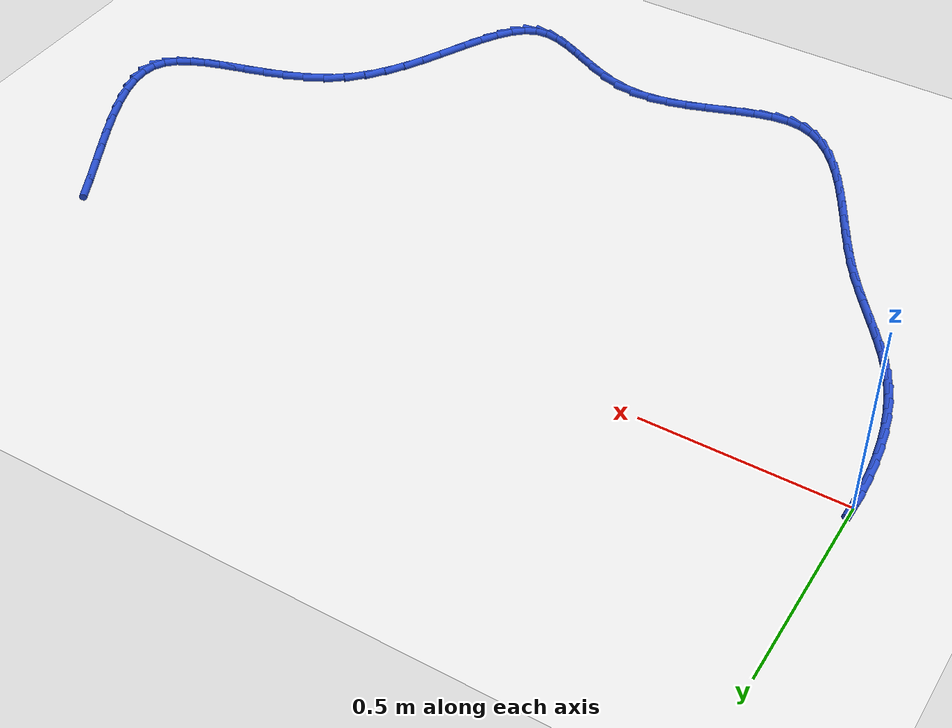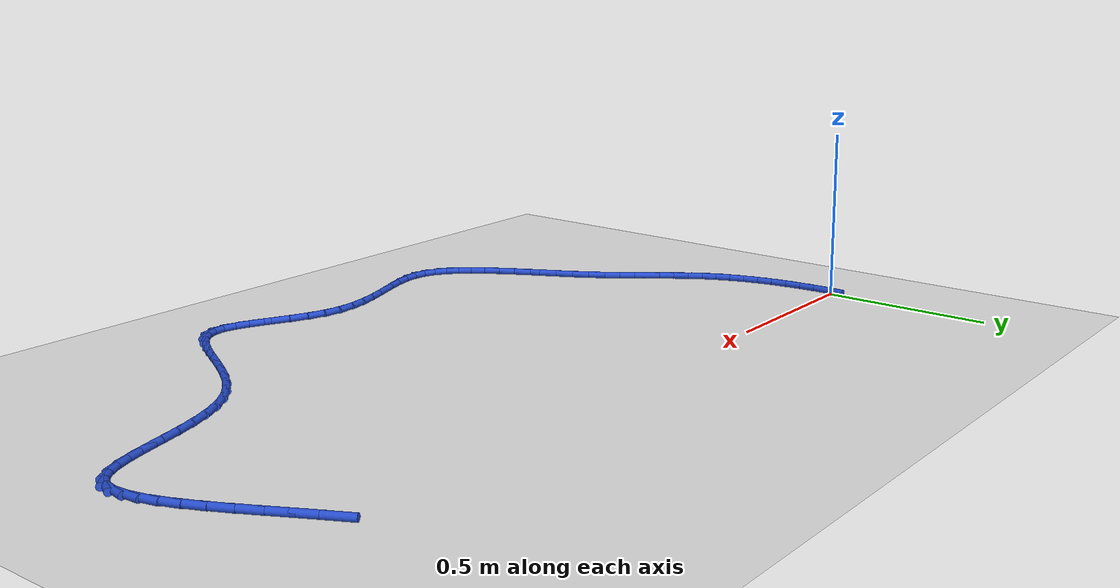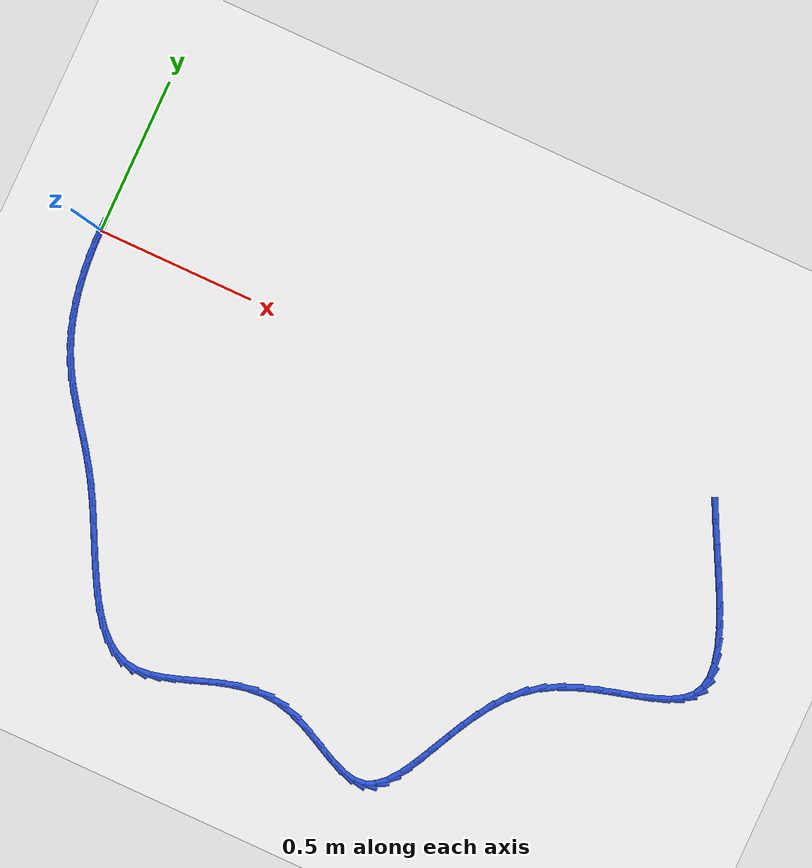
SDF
<sdf version="1.6">
 <world name="default">
  <model name="ground_plane">
   <static>1</static>
   <link name="link">
    <collision name="collision">
     <geometry><plane><normal>0 0 1</normal><size>100 100</size></plane></geometry>
     <surface><friction><ode><mu>100</mu><mu2>50</mu2></ode></friction></surface>
    </collision>
    <visual name="visual">
     <cast_shadows>0</cast_shadows>
     <geometry><plane><normal>0 0 1</normal><size>100 100</size></plane></geometry>
     <material>
      <script><uri>file://media/materials/scripts/gazebo.material</uri><name>Gazebo/WhiteGlow</name></script>
     </material>
    </visual>
   </link>
  </model>
  <model name="line">
   <link name="link_0">
    <pose>1.8214596497756474e-17 1.3877787807814457e-17 0.01 0 1.57 1.5548178268451183</pose>
    <collision name="collision">
     <geometry><cylinder><radius>0.01</radius><length>0.08</length></cylinder></geometry>
    </collision>
    <visual name="visual">
     <material>
      <script><name>Gazebo/Blue</name><uri>file://media/materials/scripts/gazebo.material</uri></script>
     </material>
     <geometry><cylinder><radius>0.01</radius><length>0.08</length></cylinder></geometry>
    </visual>
   </link>
   <link name="link_81">
    <pose>2.046188940904367 0.00824147313609748 0.01 0 1.57 -1.0976017355150212</pose>
    <collision name="collision">
     <geometry><cylinder><radius>0.01</radius><length>0.08</length></cylinder></geometry>
    </collision>
    <visual name="visual">
     <material>
      <script><name>Gazebo/Blue</name><uri>file://media/materials/scripts/gazebo.material</uri></script>
     </material>
     <geometry><cylinder><radius>0.01</radius><length>0.08</length></cylinder></geometry>
    </visual>
   </link>
   <link name="link_82">
    <pose>2.075594734433777 -0.049192689616332705 0.01 0 1.57 -1.0864667964752381</pose>
    <collision name="collision">
     <geometry><cylinder><radius>0.01</radius><length>0.08</length></cylinder></geometry>
    </collision>
    <visual name="visual">
     <material>
      <script><name>Gazebo/Blue</name><uri>file://media/materials/scripts/gazebo.material</uri></script>
     </material>
     <geometry><cylinder><radius>0.01</radius><length>0.08</length></cylinder></geometry>
    </visual>
   </link>
   <link name="link_83">
    <pose>2.1059235110085432 -0.10683811942499027 0.01 0 1.57 -1.0870074075006975</pose>
    <collision name="collision">
     <geometry><cylinder><radius>0.01</radius><length>0.08</length></cylinder></geometry>
    </collision>
    <visual name="visual">
     <material>
      <script><name>Gazebo/Blue</name><uri>file://media/materials/scripts/gazebo.material</uri></script>
     </material>
     <geometry><cylinder><radius>0.01</radius><length>0.08</length></cylinder></geometry>
    </visual>
   </link>
   <link name="link_84">
    <pose>2.1359684732666264 -0.16401910568980588 0.01 0 1.57 -1.0995557230910877</pose>
    <collision name="collision">
     <geometry><cylinder><radius>0.01</radius><length>0.08</length></cylinder></geometry>
    </collision>
    <visual name="visual">
     <material>
      <script><name>Gazebo/Blue</name><uri>file://media/materials/scripts/gazebo.material</uri></script>
     </material>
     <geometry><cylinder><radius>0.01</radius><length>0.08</length></cylinder></geometry>
    </visual>
   </link>
   <link name="link_85">
    <pose>2.1645228238459886 -0.2200599378107092 0.01 0 1.57 -1.1258431572442729</pose>
    <collision name="collision">
     <geometry><cylinder><radius>0.01</radius><length>0.08</length></cylinder></geometry>
    </collision>
    <visual name="visual">
     <material>
      <script><name>Gazebo/Blue</name><uri>file://media/materials/scripts/gazebo.material</uri></script>
     </material>
     <geometry><cylinder><radius>0.01</radius><length>0.08</length></cylinder></geometry>
    </visual>
   </link>
   <link name="link_86">
    <pose>2.19037976538459 -0.27428490518762993 0.01 0 1.57 -1.1694817657792487</pose>
    <collision name="collision">
     <geometry><cylinder><radius>0.01</radius><length>0.08</length></cylinder></geometry>
    </collision>
    <visual name="visual">
     <material>
      <script><name>Gazebo/Blue</name><uri>file://media/materials/scripts/gazebo.material</uri></script>
     </material>
     <geometry><cylinder><radius>0.01</radius><length>0.08</length></cylinder></geometry>
    </visual>
   </link>
   <link name="link_87">
    <pose>2.2123325005203918 -0.3260182972204986 0.01 0 1.57 -1.2369934002674094</pose>
    <collision name="collision">
     <geometry><cylinder><radius>0.01</radius><length>0.08</length></cylinder></geometry>
    </collision>
    <visual name="visual">
     <material>
      <script><name>Gazebo/Blue</name><uri>file://media/materials/scripts/gazebo.material</uri></script>
     </material>
     <geometry><cylinder><radius>0.01</radius><length>0.08</length></cylinder></geometry>
    </visual>
   </link>
   <link name="link_88">
    <pose>2.2291742318913537 -0.3745844033092429 0.01 0 1.57 -1.339687743128658</pose>
    <collision name="collision">
     <geometry><cylinder><radius>0.01</radius><length>0.08</length></cylinder></geometry>
    </collision>
    <visual name="visual">
     <material>
      <script><name>Gazebo/Blue</name><uri>file://media/materials/scripts/gazebo.material</uri></script>
     </material>
     <geometry><cylinder><radius>0.01</radius><length>0.08</length></cylinder></geometry>
    </visual>
   </link>
   <link name="link_89">
    <pose>2.2396981621354395 -0.4193075128537938 0.01 0 1.57 -1.4963321921765942</pose>
    <collision name="collision">
     <geometry><cylinder><radius>0.01</radius><length>0.08</length></cylinder></geometry>
    </collision>
    <visual name="visual">
     <material>
      <script><name>Gazebo/Blue</name><uri>file://media/materials/scripts/gazebo.material</uri></script>
     </material>
     <geometry><cylinder><radius>0.01</radius><length>0.08</length></cylinder></geometry>
    </visual>
   </link>
   <link name="link_90">
    <pose>2.242697493890608 -0.45951191525408075 0.01 0 1.57 1.4085096575872613</pose>
    <collision name="collision">
     <geometry><cylinder><radius>0.01</radius><length>0.08</length></cylinder></geometry>
    </collision>
    <visual name="visual">
     <material>
      <script><name>Gazebo/Blue</name><uri>file://media/materials/scripts/gazebo.material</uri></script>
     </material>
     <geometry><cylinder><radius>0.01</radius><length>0.08</length></cylinder></geometry>
    </visual>
   </link>
   <link name="link_91">
    <pose>2.236965429794821 -0.49452189991003337 0.01 0 1.57 1.0809004553279262</pose>
    <collision name="collision">
     <geometry><cylinder><radius>0.01</radius><length>0.08</length></cylinder></geometry>
    </collision>
    <visual name="visual">
     <material>
      <script><name>Gazebo/Blue</name><uri>file://media/materials/scripts/gazebo.material</uri></script>
     </material>
     <geometry><cylinder><radius>0.01</radius><length>0.08</length></cylinder></geometry>
    </visual>
   </link>
   <link name="link_92">
    <pose>2.2213905406373695 -0.5237291397155539 0.01 0 1.57 0.7586902319435239</pose>
    <collision name="collision">
     <geometry><cylinder><radius>0.01</radius><length>0.08</length></cylinder></geometry>
    </collision>
    <visual name="visual">
     <material>
      <script><name>Gazebo/Blue</name><uri>file://media/materials/scripts/gazebo.material</uri></script>
     </material>
     <geometry><cylinder><radius>0.01</radius><length>0.08</length></cylinder></geometry>
    </visual>
   </link>
   <link name="link_93">
    <pose>2.1962832214111137 -0.5475299142525645 0.01 0 1.57 0.5319614848232797</pose>
    <collision name="collision">
     <geometry><cylinder><radius>0.01</radius><length>0.08</length></cylinder></geometry>
    </collision>
    <visual name="visual">
     <material>
      <script><name>Gazebo/Blue</name><uri>file://media/materials/scripts/gazebo.material</uri></script>
     </material>
     <geometry><cylinder><radius>0.01</radius><length>0.08</length></cylinder></geometry>
    </visual>
   </link>
   <link name="link_94">
    <pose>2.163045754102558 -0.567091988757561 0.01 0 1.57 0.3920206581689313</pose>
    <collision name="collision">
     <geometry><cylinder><radius>0.01</radius><length>0.08</length></cylinder></geometry>
    </collision>
    <visual name="visual">
     <material>
      <script><name>Gazebo/Blue</name><uri>file://media/materials/scripts/gazebo.material</uri></script>
     </material>
     <geometry><cylinder><radius>0.01</radius><length>0.08</length></cylinder></geometry>
    </visual>
   </link>
   <link name="link_95">
    <pose>2.1231083559812673 -0.5836028664713032 0.01 0 1.57 0.31332876877495025</pose>
    <collision name="collision">
     <geometry><cylinder><radius>0.01</radius><length>0.08</length></cylinder></geometry>
    </collision>
    <visual name="visual">
     <material>
      <script><name>Gazebo/Blue</name><uri>file://media/materials/scripts/gazebo.material</uri></script>
     </material>
     <geometry><cylinder><radius>0.01</radius><length>0.08</length></cylinder></geometry>
    </visual>
   </link>
   <link name="link_96">
    <pose>2.0779012443168035 -0.598250050634552 0.01 0 1.57 0.27750169461137897</pose>
    <collision name="collision">
     <geometry><cylinder><radius>0.01</radius><length>0.08</length></cylinder></geometry>
    </collision>
    <visual name="visual">
     <material>
      <script><name>Gazebo/Blue</name><uri>file://media/materials/scripts/gazebo.material</uri></script>
     </material>
     <geometry><cylinder><radius>0.01</radius><length>0.08</length></cylinder></geometry>
    </visual>
   </link>
   <link name="link_97">
    <pose>2.028854636378733 -0.6122210444880669 0.01 0 1.57 0.274353634470719</pose>
    <collision name="collision">
     <geometry><cylinder><radius>0.01</radius><length>0.08</length></cylinder></geometry>
    </collision>
    <visual name="visual">
     <material>
      <script><name>Gazebo/Blue</name><uri>file://media/materials/scripts/gazebo.material</uri></script>
     </material>
     <geometry><cylinder><radius>0.01</radius><length>0.08</length></cylinder></geometry>
    </visual>
   </link>
   <link name="link_98">
    <pose>1.9773987494366194 -0.6267033512726083 0.01 0 1.57 0.2993226467915983</pose>
    <collision name="collision">
     <geometry><cylinder><radius>0.01</radius><length>0.08</length></cylinder></geometry>
    </collision>
    <visual name="visual">
     <material>
      <script><name>Gazebo/Blue</name><uri>file://media/materials/scripts/gazebo.material</uri></script>
     </material>
     <geometry><cylinder><radius>0.01</radius><length>0.08</length></cylinder></geometry>
    </visual>
   </link>
   <link name="link_99">
    <pose>1.9249638007600258 -0.6428844742289366 0.01 0 1.57 0.35155870999280564</pose>
    <collision name="collision">
     <geometry><cylinder><radius>0.01</radius><length>0.08</length></cylinder></geometry>
    </collision>
    <visual name="visual">
     <material>
      <script><name>Gazebo/Blue</name><uri>file://media/materials/scripts/gazebo.material</uri></script>
     </material>
     <geometry><cylinder><radius>0.01</radius><length>0.08</length></cylinder></geometry>
    </visual>
   </link>
   <link name="link_100">
    <pose>1.8729800076185168 -0.6619519165978118 0.01 0 1.57 0.4326886274358231</pose>
    <collision name="collision">
     <geometry><cylinder><radius>0.01</radius><length>0.08</length></cylinder></geometry>
    </collision>
    <visual name="visual">
     <material>
      <script><name>Gazebo/Blue</name><uri>file://media/materials/scripts/gazebo.material</uri></script>
     </material>
     <geometry><cylinder><radius>0.01</radius><length>0.08</length></cylinder></geometry>
    </visual>
   </link>
   <link name="link_101">
    <pose>1.8228775872816554 -0.6850931816199943 0.01 0 1.57 0.5455593657230685</pose>
    <collision name="collision">
     <geometry><cylinder><radius>0.01</radius><length>0.08</length></cylinder></geometry>
    </collision>
    <visual name="visual">
     <material>
      <script><name>Gazebo/Blue</name><uri>file://media/materials/scripts/gazebo.material</uri></script>
     </material>
     <geometry><cylinder><radius>0.01</radius><length>0.08</length></cylinder></geometry>
    </visual>
   </link>
   <link name="link_102">
    <pose>1.7760867570190073 -0.7134957725362437 0.01 0 1.57 0.6904258460177924</pose>
    <collision name="collision">
     <geometry><cylinder><radius>0.01</radius><length>0.08</length></cylinder></geometry>
    </collision>
    <visual name="visual">
     <material>
      <script><name>Gazebo/Blue</name><uri>file://media/materials/scripts/gazebo.material</uri></script>
     </material>
     <geometry><cylinder><radius>0.01</radius><length>0.08</length></cylinder></geometry>
    </visual>
   </link>
   <link name="link_103">
    <pose>1.733981688403015 -0.7482767604954491 0.01 0 1.57 0.8332734788682744</pose>
    <collision name="collision">
     <geometry><cylinder><radius>0.01</radius><length>0.08</length></cylinder></geometry>
    </collision>
    <visual name="visual">
     <material>
      <script><name>Gazebo/Blue</name><uri>file://media/materials/scripts/gazebo.material</uri></script>
     </material>
     <geometry><cylinder><radius>0.01</radius><length>0.08</length></cylinder></geometry>
    </visual>
   </link>
   <link name="link_104">
    <pose>1.6968321191472913 -0.7891652851726096 0.01 0 1.57 0.9437757573620571</pose>
    <collision name="collision">
     <geometry><cylinder><radius>0.01</radius><length>0.08</length></cylinder></geometry>
    </collision>
    <visual name="visual">
     <material>
      <script><name>Gazebo/Blue</name><uri>file://media/materials/scripts/gazebo.material</uri></script>
     </material>
     <geometry><cylinder><radius>0.01</radius><length>0.08</length></cylinder></geometry>
    </visual>
   </link>
   <link name="link_105">
    <pose>1.6638971144369745 -0.8346203837364905 0.01 0 1.57 1.0237496610962746</pose>
    <collision name="collision">
     <geometry><cylinder><radius>0.01</radius><length>0.08</length></cylinder></geometry>
    </collision>
    <visual name="visual">
     <material>
      <script><name>Gazebo/Blue</name><uri>file://media/materials/scripts/gazebo.material</uri></script>
     </material>
     <geometry><cylinder><radius>0.01</radius><length>0.08</length></cylinder></geometry>
    </visual>
   </link>
   <link name="link_106">
    <pose>1.6343984923057961 -0.8830542852167057 0.01 0 1.57 1.0766743158536016</pose>
    <collision name="collision">
     <geometry><cylinder><radius>0.01</radius><length>0.08</length></cylinder></geometry>
    </collision>
    <visual name="visual">
     <material>
      <script><name>Gazebo/Blue</name><uri>file://media/materials/scripts/gazebo.material</uri></script>
     </material>
     <geometry><cylinder><radius>0.01</radius><length>0.08</length></cylinder></geometry>
    </visual>
   </link>
   <link name="link_107">
    <pose>1.6075580707874892 -0.9328792186428664 0.01 0 1.57 1.104793071697448</pose>
    <collision name="collision">
     <geometry><cylinder><radius>0.01</radius><length>0.08</length></cylinder></geometry>
    </collision>
    <visual name="visual">
     <material>
      <script><name>Gazebo/Blue</name><uri>file://media/materials/scripts/gazebo.material</uri></script>
     </material>
     <geometry><cylinder><radius>0.01</radius><length>0.08</length></cylinder></geometry>
    </visual>
   </link>
   <link name="link_108">
    <pose>1.5825976679157854 -0.9825074130445868 0.01 0 1.57 1.108207323232043</pose>
    <collision name="collision">
     <geometry><cylinder><radius>0.01</radius><length>0.08</length></cylinder></geometry>
    </collision>
    <visual name="visual">
     <material>
      <script><name>Gazebo/Blue</name><uri>file://media/materials/scripts/gazebo.material</uri></script>
     </material>
     <geometry><cylinder><radius>0.01</radius><length>0.08</length></cylinder></geometry>
    </visual>
   </link>
   <link name="link_109">
    <pose>1.5587391017244165 -1.0303510974514793 0.01 0 1.57 1.0840511883248871</pose>
    <collision name="collision">
     <geometry><cylinder><radius>0.01</radius><length>0.08</length></cylinder></geometry>
    </collision>
    <visual name="visual">
     <material>
      <script><name>Gazebo/Blue</name><uri>file://media/materials/scripts/gazebo.material</uri></script>
     </material>
     <geometry><cylinder><radius>0.01</radius><length>0.08</length></cylinder></geometry>
    </visual>
   </link>
   <link name="link_110">
    <pose>1.5352041902471154 -1.074822500893158 0.01 0 1.57 1.025133803450332</pose>
    <collision name="collision">
     <geometry><cylinder><radius>0.01</radius><length>0.08</length></cylinder></geometry>
    </collision>
    <visual name="visual">
     <material>
      <script><name>Gazebo/Blue</name><uri>file://media/materials/scripts/gazebo.material</uri></script>
     </material>
     <geometry><cylinder><radius>0.01</radius><length>0.08</length></cylinder></geometry>
    </visual>
   </link>
   <link name="link_111">
    <pose>1.5112147515176129 -1.1143338523992359 0.01 0 1.57 0.9176675248479261</pose>
    <collision name="collision">
     <geometry><cylinder><radius>0.01</radius><length>0.08</length></cylinder></geometry>
    </collision>
    <visual name="visual">
     <material>
      <script><name>Gazebo/Blue</name><uri>file://media/materials/scripts/gazebo.material</uri></script>
     </material>
     <geometry><cylinder><radius>0.01</radius><length>0.08</length></cylinder></geometry>
    </visual>
   </link>
   <link name="link_112">
    <pose>1.4859926035696427 -1.1472973809993252 0.01 0 1.57 0.7392331496612072</pose>
    <collision name="collision">
     <geometry><cylinder><radius>0.01</radius><length>0.08</length></cylinder></geometry>
    </collision>
    <visual name="visual">
     <material>
      <script><name>Gazebo/Blue</name><uri>file://media/materials/scripts/gazebo.material</uri></script>
     </material>
     <geometry><cylinder><radius>0.01</radius><length>0.08</length></cylinder></geometry>
    </visual>
   </link>
   <link name="link_113">
    <pose>1.4587595644369362 -1.1721253157230396 0.01 0 1.57 0.4661363659453776</pose>
    <collision name="collision">
     <geometry><cylinder><radius>0.01</radius><length>0.08</length></cylinder></geometry>
    </collision>
    <visual name="visual">
     <material>
      <script><name>Gazebo/Blue</name><uri>file://media/materials/scripts/gazebo.material</uri></script>
     </material>
     <geometry><cylinder><radius>0.01</radius><length>0.08</length></cylinder></geometry>
    </visual>
   </link>
   <link name="link_114">
    <pose>1.4287374521532257 -1.1872298855999917 0.01 0 1.57 0.11331120782728289</pose>
    <collision name="collision">
     <geometry><cylinder><radius>0.01</radius><length>0.08</length></cylinder></geometry>
    </collision>
    <visual name="visual">
     <material>
      <script><name>Gazebo/Blue</name><uri>file://media/materials/scripts/gazebo.material</uri></script>
     </material>
     <geometry><cylinder><radius>0.01</radius><length>0.08</length></cylinder></geometry>
    </visual>
   </link>
   <link name="link_115">
    <pose>1.3951559466384544 -1.1910514159910435 0.01 0 1.57 -0.19290944451553954</pose>
    <collision name="collision">
     <geometry><cylinder><radius>0.01</radius><length>0.08</length></cylinder></geometry>
    </collision>
    <visual name="visual">
     <material>
      <script><name>Gazebo/Blue</name><uri>file://media/materials/scripts/gazebo.material</uri></script>
     </material>
     <geometry><cylinder><radius>0.01</radius><length>0.08</length></cylinder></geometry>
    </visual>
   </link>
   <link name="link_116">
    <pose>1.3577229599199299 -1.1837393091045878 0.01 0 1.57 -0.3656658147066032</pose>
    <collision name="collision">
     <geometry><cylinder><radius>0.01</radius><length>0.08</length></cylinder></geometry>
    </collision>
    <visual name="visual">
     <material>
      <script><name>Gazebo/Blue</name><uri>file://media/materials/scripts/gazebo.material</uri></script>
     </material>
     <geometry><cylinder><radius>0.01</radius><length>0.08</length></cylinder></geometry>
    </visual>
   </link>
   <link name="link_117">
    <pose>1.3168914366769338 -1.1681055195718546 0.01 0 1.57 -0.4462336250249246</pose>
    <collision name="collision">
     <geometry><cylinder><radius>0.01</radius><length>0.08</length></cylinder></geometry>
    </collision>
    <visual name="visual">
     <material>
      <script><name>Gazebo/Blue</name><uri>file://media/materials/scripts/gazebo.material</uri></script>
     </material>
     <geometry><cylinder><radius>0.01</radius><length>0.08</length></cylinder></geometry>
    </visual>
   </link>
   <link name="link_118">
    <pose>1.2731788534201411 -1.1471926219621147 0.01 0 1.57 -0.4655790208818763</pose>
    <collision name="collision">
     <geometry><cylinder><radius>0.01</radius><length>0.08</length></cylinder></geometry>
    </collision>
    <visual name="visual">
     <material>
      <script><name>Gazebo/Blue</name><uri>file://media/materials/scripts/gazebo.material</uri></script>
     </material>
     <geometry><cylinder><radius>0.01</radius><length>0.08</length></cylinder></geometry>
    </visual>
   </link>
   <link name="link_119">
    <pose>1.227102686660231 -1.1240431908446398 0.01 0 1.57 -0.43627860836587506</pose>
    <collision name="collision">
     <geometry><cylinder><radius>0.01</radius><length>0.08</length></cylinder></geometry>
    </collision>
    <visual name="visual">
     <material>
      <script><name>Gazebo/Blue</name><uri>file://media/materials/scripts/gazebo.material</uri></script>
     </material>
     <geometry><cylinder><radius>0.01</radius><length>0.08</length></cylinder></geometry>
    </visual>
   </link>
   <link name="link_120">
    <pose>1.1791804129078787 -1.1016998007887007 0.01 0 1.57 -0.35922781497356693</pose>
    <collision name="collision">
     <geometry><cylinder><radius>0.01</radius><length>0.08</length></cylinder></geometry>
    </collision>
    <visual name="visual">
     <material>
      <script><name>Gazebo/Blue</name><uri>file://media/materials/scripts/gazebo.material</uri></script>
     </material>
     <geometry><cylinder><radius>0.01</radius><length>0.08</length></cylinder></geometry>
    </visual>
   </link>
   <link name="link_121">
    <pose>1.129929508673761 -1.0832050263635684 0.01 0 1.57 -0.2277620966536151</pose>
    <collision name="collision">
     <geometry><cylinder><radius>0.01</radius><length>0.08</length></cylinder></geometry>
    </collision>
    <visual name="visual">
     <material>
      <script><name>Gazebo/Blue</name><uri>file://media/materials/scripts/gazebo.material</uri></script>
     </material>
     <geometry><cylinder><radius>0.01</radius><length>0.08</length></cylinder></geometry>
    </visual>
   </link>
   <link name="link_122">
    <pose>1.0798674504685573 -1.0716014421385152 0.01 0 1.57 -0.049780841984037434</pose>
    <collision name="collision">
     <geometry><cylinder><radius>0.01</radius><length>0.08</length></cylinder></geometry>
    </collision>
    <visual name="visual">
     <material>
      <script><name>Gazebo/Blue</name><uri>file://media/materials/scripts/gazebo.material</uri></script>
     </material>
     <geometry><cylinder><radius>0.01</radius><length>0.08</length></cylinder></geometry>
    </visual>
   </link>
   <link name="link_123">
    <pose>1.029481223050467 -1.0690910993167595 0.01 0 1.57 0.10684535245007865</pose>
    <collision name="collision">
     <geometry><cylinder><radius>0.01</radius><length>0.08</length></cylinder></geometry>
    </collision>
    <visual name="visual">
     <material>
      <script><name>Gazebo/Blue</name><uri>file://media/materials/scripts/gazebo.material</uri></script>
     </material>
     <geometry><cylinder><radius>0.01</radius><length>0.08</length></cylinder></geometry>
    </visual>
   </link>
   <link name="link_124">
    <pose>0.9791350085741759 -1.0744909220003962 0.01 0 1.57 0.2219033494783704</pose>
    <collision name="collision">
     <geometry><cylinder><radius>0.01</radius><length>0.08</length></cylinder></geometry>
    </collision>
    <visual name="visual">
     <material>
      <script><name>Gazebo/Blue</name><uri>file://media/materials/scripts/gazebo.material</uri></script>
     </material>
     <geometry><cylinder><radius>0.01</radius><length>0.08</length></cylinder></geometry>
    </visual>
   </link>
   <link name="link_125">
    <pose>0.9291620782159219 -1.0857657547112125 0.01 0 1.57 0.2976792024455679</pose>
    <collision name="collision">
     <geometry><cylinder><radius>0.01</radius><length>0.08</length></cylinder></geometry>
    </collision>
    <visual name="visual">
     <material>
      <script><name>Gazebo/Blue</name><uri>file://media/materials/scripts/gazebo.material</uri></script>
     </material>
     <geometry><cylinder><radius>0.01</radius><length>0.08</length></cylinder></geometry>
    </visual>
   </link>
   <link name="link_126">
    <pose>0.8798957031515802 -1.100880441961021 0.01 0 1.57 0.3374152721832894</pose>
    <collision name="collision">
     <geometry><cylinder><radius>0.01</radius><length>0.08</length></cylinder></geometry>
    </collision>
    <visual name="visual">
     <material>
      <script><name>Gazebo/Blue</name><uri>file://media/materials/scripts/gazebo.material</uri></script>
     </material>
     <geometry><cylinder><radius>0.01</radius><length>0.08</length></cylinder></geometry>
    </visual>
   </link>
   <link name="link_127">
    <pose>0.8316691545570284 -1.1177998282616328 0.01 0 1.57 0.34218238992748407</pose>
    <collision name="collision">
     <geometry><cylinder><radius>0.01</radius><length>0.08</length></cylinder></geometry>
    </collision>
    <visual name="visual">
     <material>
      <script><name>Gazebo/Blue</name><uri>file://media/materials/scripts/gazebo.material</uri></script>
     </material>
     <geometry><cylinder><radius>0.01</radius><length>0.08</length></cylinder></geometry>
    </visual>
   </link>
   <link name="link_128">
    <pose>0.7848157036081418 -1.1344887581248602 0.01 0 1.57 0.3092257112772875</pose>
    <collision name="collision">
     <geometry><cylinder><radius>0.01</radius><length>0.08</length></cylinder></geometry>
    </collision>
    <visual name="visual">
     <material>
      <script><name>Gazebo/Blue</name><uri>file://media/materials/scripts/gazebo.material</uri></script>
     </material>
     <geometry><cylinder><radius>0.01</radius><length>0.08</length></cylinder></geometry>
    </visual>
   </link>
   <link name="link_129">
    <pose>0.7396686214807963 -1.1489120760625149 0.01 0 1.57 0.23064271413585147</pose>
    <collision name="collision">
     <geometry><cylinder><radius>0.01</radius><length>0.08</length></cylinder></geometry>
    </collision>
    <visual name="visual">
     <material>
      <script><name>Gazebo/Blue</name><uri>file://media/materials/scripts/gazebo.material</uri></script>
     </material>
     <geometry><cylinder><radius>0.01</radius><length>0.08</length></cylinder></geometry>
    </visual>
   </link>
   <link name="link_130">
    <pose>0.6965611793508679 -1.1590346265864087 0.01 0 1.57 0.09269228324031194</pose>
    <collision name="collision">
     <geometry><cylinder><radius>0.01</radius><length>0.08</length></cylinder></geometry>
    </collision>
    <visual name="visual">
     <material>
      <script><name>Gazebo/Blue</name><uri>file://media/materials/scripts/gazebo.material</uri></script>
     </material>
     <geometry><cylinder><radius>0.01</radius><length>0.08</length></cylinder></geometry>
    </visual>
   </link>
   <link name="link_131">
    <pose>0.6558266483942322 -1.1628212542083536 0.01 0 1.57 -0.11929080922622708</pose>
    <collision name="collision">
     <geometry><cylinder><radius>0.01</radius><length>0.08</length></cylinder></geometry>
    </collision>
    <visual name="visual">
     <material>
      <script><name>Gazebo/Blue</name><uri>file://media/materials/scripts/gazebo.material</uri></script>
     </material>
     <geometry><cylinder><radius>0.01</radius><length>0.08</length></cylinder></geometry>
    </visual>
   </link>
   <link name="link_132">
    <pose>0.6177927016752428 -1.1582625092855279 0.01 0 1.57 -0.37032120672862423</pose>
    <collision name="collision">
     <geometry><cylinder><radius>0.01</radius><length>0.08</length></cylinder></geometry>
    </collision>
    <visual name="visual">
     <material>
      <script><name>Gazebo/Blue</name><uri>file://media/materials/scripts/gazebo.material</uri></script>
     </material>
     <geometry><cylinder><radius>0.01</radius><length>0.08</length></cylinder></geometry>
    </visual>
   </link>
   <link name="link_133">
    <pose>0.5825213128412515 -1.1445690014930152 0.01 0 1.57 -0.5882116431353653</pose>
    <collision name="collision">
     <geometry><cylinder><radius>0.01</radius><length>0.08</length></cylinder></geometry>
    </collision>
    <visual name="visual">
     <material>
      <script><name>Gazebo/Blue</name><uri>file://media/materials/scripts/gazebo.material</uri></script>
     </material>
     <geometry><cylinder><radius>0.01</radius><length>0.08</length></cylinder></geometry>
    </visual>
   </link>
   <link name="link_134">
    <pose>0.5496985890551268 -1.122677273561615 0.01 0 1.57 -0.7570537398468977</pose>
    <collision name="collision">
     <geometry><cylinder><radius>0.01</radius><length>0.08</length></cylinder></geometry>
    </collision>
    <visual name="visual">
     <material>
      <script><name>Gazebo/Blue</name><uri>file://media/materials/scripts/gazebo.material</uri></script>
     </material>
     <geometry><cylinder><radius>0.01</radius><length>0.08</length></cylinder></geometry>
    </visual>
   </link>
   <link name="link_135">
    <pose>0.5189821715461201 -1.0936545803175635 0.01 0 1.57 -0.8808913694775452</pose>
    <collision name="collision">
     <geometry><cylinder><radius>0.01</radius><length>0.08</length></cylinder></geometry>
    </collision>
    <visual name="visual">
     <material>
      <script><name>Gazebo/Blue</name><uri>file://media/materials/scripts/gazebo.material</uri></script>
     </material>
     <geometry><cylinder><radius>0.01</radius><length>0.08</length></cylinder></geometry>
    </visual>
   </link>
   <link name="link_136">
    <pose>0.4900297015434827 -1.058568176587094 0.01 0 1.57 -0.9689510144160767</pose>
    <collision name="collision">
     <geometry><cylinder><radius>0.01</radius><length>0.08</length></cylinder></geometry>
    </collision>
    <visual name="visual">
     <material>
      <script><name>Gazebo/Blue</name><uri>file://media/materials/scripts/gazebo.material</uri></script>
     </material>
     <geometry><cylinder><radius>0.01</radius><length>0.08</length></cylinder></geometry>
    </visual>
   </link>
   <link name="link_137">
    <pose>0.4624988202764667 -1.0184853171964436 0.01 0 1.57 -1.02963512818906</pose>
    <collision name="collision">
     <geometry><cylinder><radius>0.01</radius><length>0.08</length></cylinder></geometry>
    </collision>
    <visual name="visual">
     <material>
      <script><name>Gazebo/Blue</name><uri>file://media/materials/scripts/gazebo.material</uri></script>
     </material>
     <geometry><cylinder><radius>0.01</radius><length>0.08</length></cylinder></geometry>
    </visual>
   </link>
   <link name="link_138">
    <pose>0.43604716897432355 -0.9744732569718474 0.01 0 1.57 -1.0690335221133276</pose>
    <collision name="collision">
     <geometry><cylinder><radius>0.01</radius><length>0.08</length></cylinder></geometry>
    </collision>
    <visual name="visual">
     <material>
      <script><name>Gazebo/Blue</name><uri>file://media/materials/scripts/gazebo.material</uri></script>
     </material>
     <geometry><cylinder><radius>0.01</radius><length>0.08</length></cylinder></geometry>
    </visual>
   </link>
   <link name="link_139">
    <pose>0.4103323888663047 -0.9275992507395399 0.01 0 1.57 -1.091074156476096</pose>
    <collision name="collision">
     <geometry><cylinder><radius>0.01</radius><length>0.08</length></cylinder></geometry>
    </collision>
    <visual name="visual">
     <material>
      <script><name>Gazebo/Blue</name><uri>file://media/materials/scripts/gazebo.material</uri></script>
     </material>
     <geometry><cylinder><radius>0.01</radius><length>0.08</length></cylinder></geometry>
    </visual>
   </link>
   <link name="link_140">
    <pose>0.3850121211816615 -0.8789305533257568 0.01 0 1.57 -1.0979591426259863</pose>
    <collision name="collision">
     <geometry><cylinder><radius>0.01</radius><length>0.08</length></cylinder></geometry>
    </collision>
    <visual name="visual">
     <material>
      <script><name>Gazebo/Blue</name><uri>file://media/materials/scripts/gazebo.material</uri></script>
     </material>
     <geometry><cylinder><radius>0.01</radius><length>0.08</length></cylinder></geometry>
    </visual>
   </link>
   <link name="link_141">
    <pose>0.3597440071496453 -0.829534419556732 0.01 0 1.57 -1.09049054199269</pose>
    <collision name="collision">
     <geometry><cylinder><radius>0.01</radius><length>0.08</length></cylinder></geometry>
    </collision>
    <visual name="visual">
     <material>
      <script><name>Gazebo/Blue</name><uri>file://media/materials/scripts/gazebo.material</uri></script>
     </material>
     <geometry><cylinder><radius>0.01</radius><length>0.08</length></cylinder></geometry>
    </visual>
   </link>
   <link name="link_142">
    <pose>0.33418568799950826 -0.7804781042587029 0.01 0 1.57 -1.0682141788384525</pose>
    <collision name="collision">
     <geometry><cylinder><radius>0.01</radius><length>0.08</length></cylinder></geometry>
    </collision>
    <visual name="visual">
     <material>
      <script><name>Gazebo/Blue</name><uri>file://media/materials/scripts/gazebo.material</uri></script>
     </material>
     <geometry><cylinder><radius>0.01</radius><length>0.08</length></cylinder></geometry>
    </visual>
   </link>
   <link name="link_143">
    <pose>0.30799480496050174 -0.7328288622579036 0.01 0 1.57 -1.0298134206790361</pose>
    <collision name="collision">
     <geometry><cylinder><radius>0.01</radius><length>0.08</length></cylinder></geometry>
    </collision>
    <visual name="visual">
     <material>
      <script><name>Gazebo/Blue</name><uri>file://media/materials/scripts/gazebo.material</uri></script>
     </material>
     <geometry><cylinder><radius>0.01</radius><length>0.08</length></cylinder></geometry>
    </visual>
   </link>
   <link name="link_144">
    <pose>0.28084088568109067 -0.6876300709139098 0.01 0 1.57 -0.9864647480413514</pose>
    <collision name="collision">
     <geometry><cylinder><radius>0.01</radius><length>0.08</length></cylinder></geometry>
    </collision>
    <visual name="visual">
     <material>
      <script><name>Gazebo/Blue</name><uri>file://media/materials/scripts/gazebo.material</uri></script>
     </material>
     <geometry><cylinder><radius>0.01</radius><length>0.08</length></cylinder></geometry>
    </visual>
   </link>
   <link name="link_145">
    <pose>0.25276481119694816 -0.6451791320353404 0.01 0 1.57 -0.9546730620235223</pose>
    <collision name="collision">
     <geometry><cylinder><radius>0.01</radius><length>0.08</length></cylinder></geometry>
    </collision>
    <visual name="visual">
     <material>
      <script><name>Gazebo/Blue</name><uri>file://media/materials/scripts/gazebo.material</uri></script>
     </material>
     <geometry><cylinder><radius>0.01</radius><length>0.08</length></cylinder></geometry>
    </visual>
   </link>
   <link name="link_146">
    <pose>0.2242430943741353 -0.6048983491931667 0.01 0 1.57 -0.9370751455226853</pose>
    <collision name="collision">
     <geometry><cylinder><radius>0.01</radius><length>0.08</length></cylinder></geometry>
    </collision>
    <visual name="visual">
     <material>
      <script><name>Gazebo/Blue</name><uri>file://media/materials/scripts/gazebo.material</uri></script>
     </material>
     <geometry><cylinder><radius>0.01</radius><length>0.08</length></cylinder></geometry>
    </visual>
   </link>
   <link name="link_147">
    <pose>0.1957770929816858 -0.5661601174592871 0.01 0 1.57 -0.9350992654229127</pose>
    <collision name="collision">
     <geometry><cylinder><radius>0.01</radius><length>0.08</length></cylinder></geometry>
    </collision>
    <visual name="visual">
     <material>
      <script><name>Gazebo/Blue</name><uri>file://media/materials/scripts/gazebo.material</uri></script>
     </material>
     <geometry><cylinder><radius>0.01</radius><length>0.08</length></cylinder></geometry>
    </visual>
   </link>
   <link name="link_148">
    <pose>0.16786816478863167 -0.5283368319055975 0.01 0 1.57 -0.9498572786045892</pose>
    <collision name="collision">
     <geometry><cylinder><radius>0.01</radius><length>0.08</length></cylinder></geometry>
    </collision>
    <visual name="visual">
     <material>
      <script><name>Gazebo/Blue</name><uri>file://media/materials/scripts/gazebo.material</uri></script>
     </material>
     <geometry><cylinder><radius>0.01</radius><length>0.08</length></cylinder></geometry>
    </visual>
   </link>
   <link name="link_149">
    <pose>0.1410176675640057 -0.4908008876039953 0.01 0 1.57 -0.9820647210231572</pose>
    <collision name="collision">
     <geometry><cylinder><radius>0.01</radius><length>0.08</length></cylinder></geometry>
    </collision>
    <visual name="visual">
     <material>
      <script><name>Gazebo/Blue</name><uri>file://media/materials/scripts/gazebo.material</uri></script>
     </material>
     <geometry><cylinder><radius>0.01</radius><length>0.08</length></cylinder></geometry>
    </visual>
   </link>
   <link name="link_150">
    <pose>0.11572695907684033 -0.4529246796263768 0.01 0 1.57 -1.0318334629773174</pose>
    <collision name="collision">
     <geometry><cylinder><radius>0.01</radius><length>0.08</length></cylinder></geometry>
    </collision>
    <visual name="visual">
     <material>
      <script><name>Gazebo/Blue</name><uri>file://media/materials/scripts/gazebo.material</uri></script>
     </material>
     <geometry><cylinder><radius>0.01</radius><length>0.08</length></cylinder></geometry>
    </visual>
   </link>
   <link name="link_151">
    <pose>0.09249739709616789 -0.4140806030446385 0.01 0 1.57 -1.0983017687707812</pose>
    <collision name="collision">
     <geometry><cylinder><radius>0.01</radius><length>0.08</length></cylinder></geometry>
    </collision>
    <visual name="visual">
     <material>
      <script><name>Gazebo/Blue</name><uri>file://media/materials/scripts/gazebo.material</uri></script>
     </material>
     <geometry><cylinder><radius>0.01</radius><length>0.08</length></cylinder></geometry>
    </visual>
   </link>
   <link name="link_152">
    <pose>0.07182921851768209 -0.37364262510718127 0.01 0 1.57 -1.1733930840295352</pose>
    <collision name="collision">
     <geometry><cylinder><radius>0.01</radius><length>0.08</length></cylinder></geometry>
    </collision>
    <visual name="visual">
     <material>
      <script><name>Gazebo/Blue</name><uri>file://media/materials/scripts/gazebo.material</uri></script>
     </material>
     <geometry><cylinder><radius>0.01</radius><length>0.08</length></cylinder></geometry>
    </visual>
   </link>
   <link name="link_153">
    <pose>0.05403478300237598 -0.3312482363021297 0.01 0 1.57 -1.2432162304881247</pose>
    <collision name="collision">
     <geometry><cylinder><radius>0.01</radius><length>0.08</length></cylinder></geometry>
    </collision>
    <visual name="visual">
     <material>
      <script><name>Gazebo/Blue</name><uri>file://media/materials/scripts/gazebo.material</uri></script>
     </material>
     <geometry><cylinder><radius>0.01</radius><length>0.08</length></cylinder></geometry>
    </visual>
   </link>
   <link name="link_154">
    <pose>0.03902940850204303 -0.28709183183084847 0.01 0 1.57 -1.3065728179961569</pose>
    <collision name="collision">
     <geometry><cylinder><radius>0.01</radius><length>0.08</length></cylinder></geometry>
    </collision>
    <visual name="visual">
     <material>
      <script><name>Gazebo/Blue</name><uri>file://media/materials/scripts/gazebo.material</uri></script>
     </material>
     <geometry><cylinder><radius>0.01</radius><length>0.08</length></cylinder></geometry>
    </visual>
   </link>
   <link name="link_155">
    <pose>0.026677962109281802 -0.24143857105026023 0.01 0 1.57 -1.3640735908182435</pose>
    <collision name="collision">
     <geometry><cylinder><radius>0.01</radius><length>0.08</length></cylinder></geometry>
    </collision>
    <visual name="visual">
     <material>
      <script><name>Gazebo/Blue</name><uri>file://media/materials/scripts/gazebo.material</uri></script>
     </material>
     <geometry><cylinder><radius>0.01</radius><length>0.08</length></cylinder></geometry>
    </visual>
   </link>
   <link name="link_156">
    <pose>0.016845310916690684 -0.19455361331728668 0.01 0 1.57 -1.4163669013133597</pose>
    <collision name="collision">
     <geometry><cylinder><radius>0.01</radius><length>0.08</length></cylinder></geometry>
    </collision>
    <visual name="visual">
     <material>
      <script><name>Gazebo/Blue</name><uri>file://media/materials/scripts/gazebo.material</uri></script>
     </material>
     <geometry><cylinder><radius>0.01</radius><length>0.08</length></cylinder></geometry>
    </visual>
   </link>
   <link name="link_157">
    <pose>0.00939632201686853 -0.14670211798885197 0.01 0 1.57 -1.4640939280170988</pose>
    <collision name="collision">
     <geometry><cylinder><radius>0.01</radius><length>0.08</length></cylinder></geometry>
    </collision>
    <visual name="visual">
     <material>
      <script><name>Gazebo/Blue</name><uri>file://media/materials/scripts/gazebo.material</uri></script>
     </material>
     <geometry><cylinder><radius>0.01</radius><length>0.08</length></cylinder></geometry>
    </visual>
   </link>
   <link name="link_158">
    <pose>0.004195862502413687 -0.09814924442187764 0.01 0 1.57 -1.5078642245611218</pose>
    <collision name="collision">
     <geometry><cylinder><radius>0.01</radius><length>0.08</length></cylinder></geometry>
    </collision>
    <visual name="visual">
     <material>
      <script><name>Gazebo/Blue</name><uri>file://media/materials/scripts/gazebo.material</uri></script>
     </material>
     <geometry><cylinder><radius>0.01</radius><length>0.08</length></cylinder></geometry>
    </visual>
   </link>
   <link name="link_159">
    <pose>0.0011087994659246736 -0.04916015197328617 0.01 0 1.57 -1.5482453082231487</pose>
    <collision name="collision">
     <geometry><cylinder><radius>0.01</radius><length>0.08</length></cylinder></geometry>
    </collision>
    <visual name="visual">
     <material>
      <script><name>Gazebo/Blue</name><uri>file://media/materials/scripts/gazebo.material</uri></script>
     </material>
     <geometry><cylinder><radius>0.01</radius><length>0.08</length></cylinder></geometry>
    </visual>
   </link>
   <link name="link_160">
    <pose>2.5153490401663703e-17 -1.249000902703301e-16 0.01 0 1.57 1.5558312675365935</pose>
    <collision name="collision">
     <geometry><cylinder><radius>0.01</radius><length>0.08</length></cylinder></geometry>
    </collision>
    <visual name="visual">
     <material>
      <script><name>Gazebo/Blue</name><uri>file://media/materials/scripts/gazebo.material</uri></script>
     </material>
     <geometry><cylinder><radius>0.01</radius><length>0.08</length></cylinder></geometry>
    </visual>
   </link>
  </model>
 </world>
</sdf>
